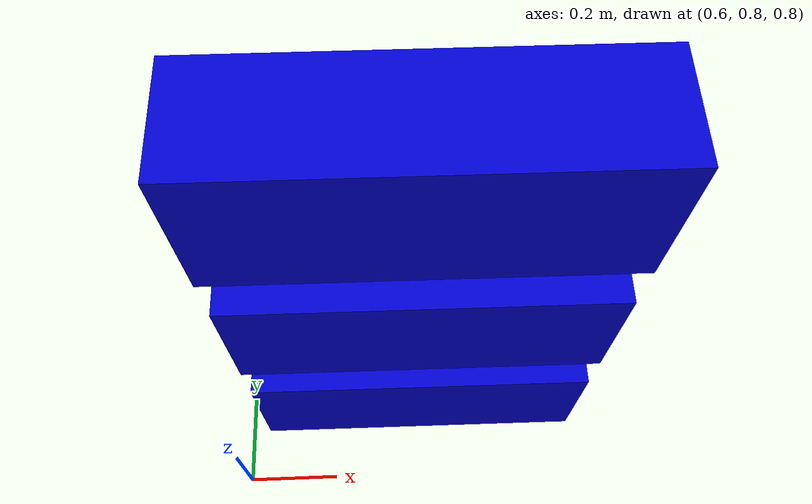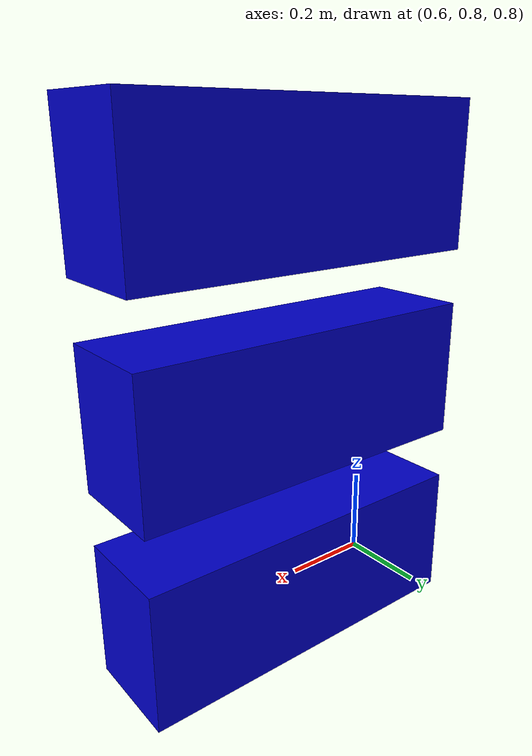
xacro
<?xml version="1.0"?>
<robot name="book1"  xmlns:xacro="http://ros.org/wiki/xacro">

  <link name="base_footprint"/>

  <joint name="base_joint" type="fixed">
    <parent link="base_footprint"/>
    <child link="base_link"/>
    <origin rpy="0 0 0" xyz="1 1 1"/>
  </joint>

  <link name="base_link">
    <inertial>
     <origin xyz="0 0 0" rpy="0 0 0"/>
     <mass value="2.0"/>
     <inertia ixx="0.0001"  ixy="0"  ixz="0" iyy="0.0001" iyz="0" izz="0.001" />
    </inertial>

    <visual>
      <geometry>
        <box size="0.7 0.2 0.27"/>
      </geometry>
      <origin rpy="0 0 0" xyz="0 0 0"/>
      <material name="white">
          <color rgba="0 0 0.8 1"/>
      </material>
    </visual>

   <collision>
     <origin xyz="0 0 0" rpy="0 0 0"/>
     <geometry>
       <box size="0.7 0.2 0.27"/>
     </geometry>
   </collision>

  </link>

  <joint name="book_joint_2" type="fixed">
    <parent link="base_link"/>
    <child link="book_link_2"/>
    <origin rpy="0 0 0" xyz="0 0 0.375"/>
  </joint>

  <link name="book_link_2">
    <inertial>
     <origin xyz="0 0 0.375" rpy="0 0 0"/>
     <mass value="2.0"/>
     <inertia ixx="0.0001"  ixy="0"  ixz="0" iyy="0.0001" iyz="0" izz="0.001" />
    </inertial>

    <visual>
      <geometry>
        <box size="0.7 0.2 0.27"/>
      </geometry>
      <origin rpy="0 0 0" xyz="0 0 0"/>
      <material name="white">
          <color rgba="0 0 0.8 1"/>
      </material>
    </visual>

   <collision>
     <origin xyz="0 0 0" rpy="0 0 0"/>
     <geometry>
       <box size="0.7 0.2 0.27"/>
     </geometry>
   </collision>

  </link>

  <joint name="book_joint_3" type="fixed">
    <parent link="base_link"/>
    <child link="book_link_3"/>
    <origin rpy="0 0 0" xyz="0 0 0.75"/>
  </joint>

  <link name="book_link_3">
    <inertial>
     <origin xyz="0 0 0" rpy="0 0 0"/>
     <mass value="2.0"/>
     <inertia ixx="0.0001"  ixy="0"  ixz="0" iyy="0.0001" iyz="0" izz="0.001" />
    </inertial>

    <visual>
      <geometry>
        <box size="0.7 0.2 0.27"/>
      </geometry>
      <origin rpy="0 0 0" xyz="0 0 0"/>
      <material name="white">
          <color rgba="0 0 0.8 1"/>
      </material>
    </visual>

   <collision>
     <origin xyz="0 0 0" rpy="0 0 0"/>
     <geometry>
       <box size="0.7 0.2 0.27"/>
     </geometry>
   </collision>

  </link>

</robot>
